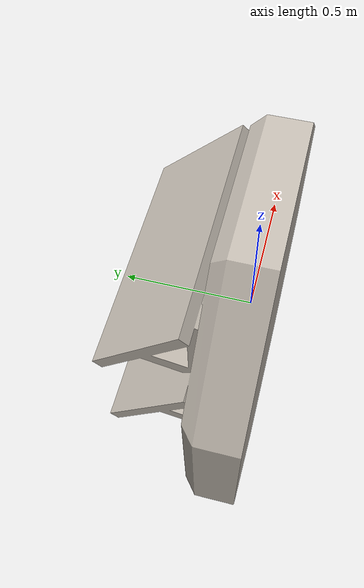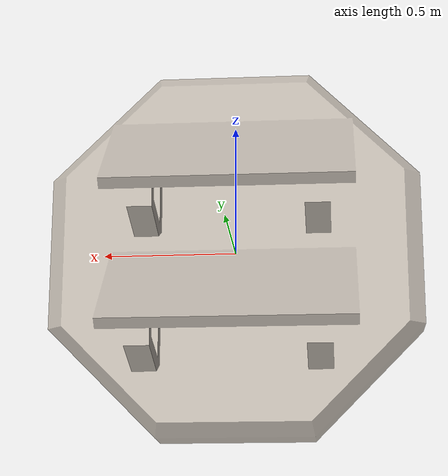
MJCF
<mujoco model="roofmodule_solarpanels">
  <default>
    <default class="visual">
      <geom group="2" type="mesh" contype="0" conaffinity="0" />
    </default>
    <default class="collision">
      <geom group="3" type="mesh" />
    </default>
  </default>
  <asset>
    <texture type="2d" name="roofmodule_solarpanels_spacebits_texture" file="spacebits_texture.png" />
    <material name="roofmodule_solarpanels_spacebits_texture" texture="roofmodule_solarpanels_spacebits_texture" specular="0.50196078" shininess="0.15999998099999999" />
    <mesh file="roofmodule_solarpanels.obj" name="roofmodule_solarpanels_roofmodule_solarpanels" />
  </asset>
  <worldbody>
    <body name="roofmodule_solarpanels">
      <geom material="roofmodule_solarpanels_spacebits_texture" mesh="roofmodule_solarpanels_roofmodule_solarpanels" class="visual" />
      <geom mesh="roofmodule_solarpanels_roofmodule_solarpanels" class="collision" />
    </body>
  </worldbody>
</mujoco>
